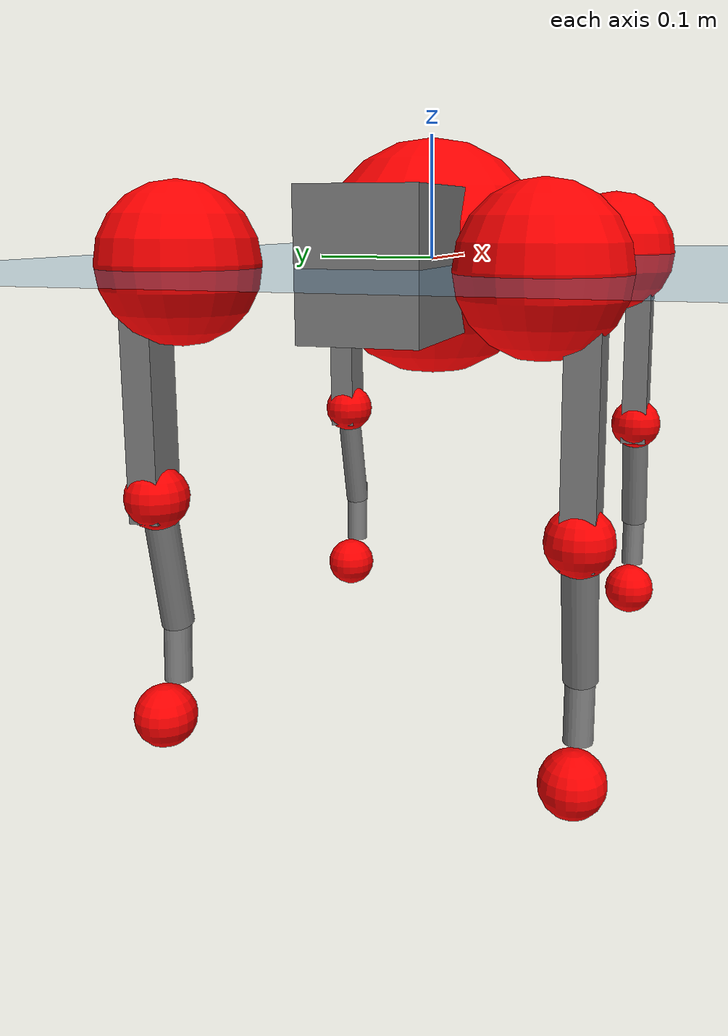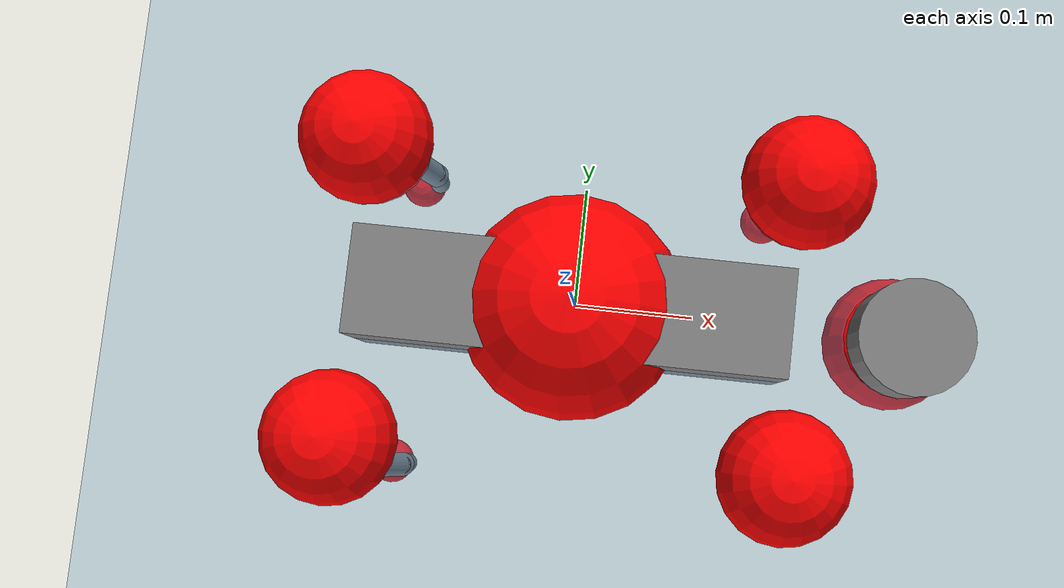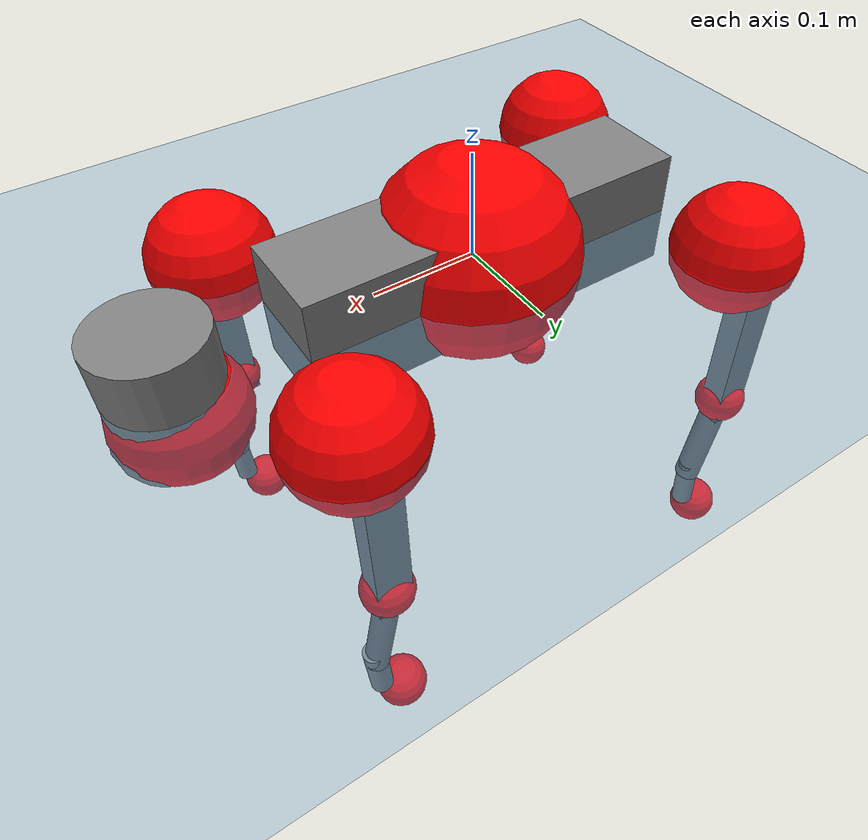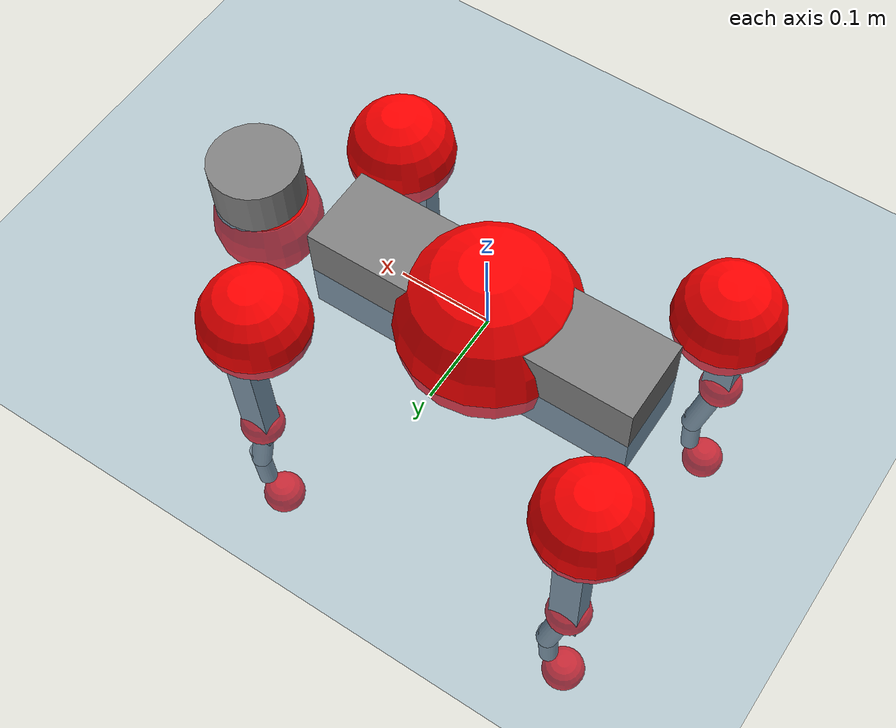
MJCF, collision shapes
<mujoco model="go2">
  <compiler angle="radian" assetdir="assets" balanceinertia="true" inertiafromgeom="false"/>

  <option timestep="0.005" density="1.2" viscosity="2e-05"/>

  <size nkey="1"/>

  <visual>
    <quality shadowsize="8192"/>
    <map shadowclip="0.5"/>
  </visual>

  <default>
    <default class="/">
      <geom contype="0" conaffinity="0" group="1" solref="-1000 -80"/>
      <site size="0.01 0.005 0.005" group="5"/>
      <general forcelimited="true" biastype="affine" gainprm="20" biasprm="0 -20 -0.5"/>
      <default class="go2">
        <joint armature="0.01" damping="0.01" frictionloss="0.2"/>
        <geom condim="1" margin="0.001"/>
        <default class="visual">
          <geom type="mesh" group="2"/>
        </default>
        <default class="collision">
          <geom group="3"/>
          <default class="foot">
            <geom size="0.022 0 0" condim="6" priority="1" friction="0.8 0.02 0.01" solimp="0.015 1 0.022"/>
          </default>
        </default>
        <default class="reward_collision_sphere">
          <geom group="5" rgba="1 0 0 1"/>
        </default>
      </default>
    </default>
  </default>

  <asset>
    <texture type="skybox" colorspace="auto" name="//unnamed_texture_0" builtin="gradient" rgb1="0.95 0.95 0.95" rgb2="0.95 0.95 0.95" width="100" height="600"/>
    <texture type="2d" colorspace="auto" name="texplane" builtin="checker" rgb1="0.345 0.575 0.748" rgb2="0.345 0.575 0.748" markrgb="1 1 1" width="512" height="512"/>
    <material name="MatPlane" class="/" texture="texplane" texuniform="true" texrepeat="2 2" specular="0.9"/>
    <material name="metal" class="/" rgba="0.9 0.95 0.95 1"/>
    <material name="black" class="/" rgba="0 0 0 1"/>
    <material name="white" class="/"/>
    <material name="gray" class="/" rgba="0.671705 0.692426 0.77427 1"/>
    <mesh name="base_0" class="/" file="base_0.obj"/>
    <mesh name="base_1" class="/" file="base_1.obj"/>
    <mesh name="base_2" class="/" file="base_2.obj"/>
    <mesh name="base_3" class="/" file="base_3.obj"/>
    <mesh name="base_4" class="/" file="base_4.obj"/>
    <mesh name="hip_0" class="/" file="hip_0.obj"/>
    <mesh name="hip_1" class="/" file="hip_1.obj"/>
    <mesh name="thigh_0" class="/" file="thigh_0.obj"/>
    <mesh name="thigh_1" class="/" file="thigh_1.obj"/>
    <mesh name="thigh_mirror_0" class="/" file="thigh_mirror_0.obj"/>
    <mesh name="thigh_mirror_1" class="/" file="thigh_mirror_1.obj"/>
    <mesh name="calf_0" class="/" file="calf_0.obj"/>
    <mesh name="calf_1" class="/" file="calf_1.obj"/>
    <mesh name="calf_mirror_0" class="/" file="calf_mirror_0.obj"/>
    <mesh name="calf_mirror_1" class="/" file="calf_mirror_1.obj"/>
    <mesh name="foot" class="/" file="foot.obj"/>
  </asset>

  <worldbody>
    <geom name="floor" class="/" size="100 100 0.125" type="plane" group="0" material="MatPlane"/>
    <light name="toplight_shadow" class="/" pos="0 0 5" dir="0.0990148 0.0990148 -0.990148" type="directional" ambient="0.04 0.04 0.04" diffuse="0.55 0.55 0.55" specular="0.12 0.12 0.12"/>
    <light name="toplight_fill" class="/" pos="0 0 5" dir="0.0990148 0.0990148 -0.990148" type="directional" castshadow="false" ambient="0.04 0.04 0.04" diffuse="0.3 0.3 0.3" specular="0.08 0.08 0.08"/>
    <body name="trunk" childclass="go2" pos="-0.00265958 -0.00145191 0.000702128" quat="0.999999 -0.000278964 0.00101773 -0.000103215">
      <inertial pos="0.0181203 -0.000394644 -0.00463347" quat="0.00232675 0.714114 0.000476849 0.700025" mass="6.19151" diaginertia="0.105634 0.159248 0.00872958"/>
      <joint name="//unnamed_joint_0" type="free" armature="0" damping="0" frictionloss="0"/>
      <geom name="//unnamed_geom_1" class="visual" material="black" mesh="base_0"/>
      <geom name="//unnamed_geom_2" class="visual" material="black" mesh="base_1"/>
      <geom name="//unnamed_geom_3" class="visual" material="black" mesh="base_2"/>
      <geom name="//unnamed_geom_4" class="visual" material="white" mesh="base_3"/>
      <geom name="//unnamed_geom_5" class="visual" material="gray" mesh="base_4"/>
      <geom name="trunk_1" class="collision" size="0.182171 0.0452764 0.0552033" type="box"/>
      <geom name="trunk_2" class="collision" size="0.0484239 0.0435815" pos="0.283607 0 0.0080925" type="cylinder"/>
      <geom name="trunk_3" class="collision" size="0.0455185" pos="0.291568 0 -0.048555"/>
      <geom name="//unnamed_geom_9" class="reward_collision_sphere" size="0.0968479"/>
      <geom name="//unnamed_geom_10" class="reward_collision_sphere" size="0.0581087" pos="0.278631 0 -0.0364162"/>
      <site name="imu" pos="-0.023819 -0.00422281 0.0395776" size="0.00968479"/>
      <camera name="track" pos="0 -2.20215 0" quat="0.707107 0.707107 0 0" mode="trackcom"/>
      <camera name="ego_camera" pos="0.310475 0 0.0364162" quat="-0.5 -0.5 0.5 0.5"/>
      <body name="FL_hip" pos="0.191249 0.0503853 0.00241019" quat="0.999999 -0.000933277 -0.00038655 0.000709353">
        <inertial pos="-0.00801585 0.00237405 -0.000462863" quat="0.495651 0.497941 0.506193 0.500154" mass="0.635667" diaginertia="0.000893907 0.000961338 0.000172348"/>
        <joint name="FL_hip_joint" pos="0 0 0" axis="0.999992 -0.00220177 -0.00344483" stiffness="0.00389989" range="-1.05794 0.99954" armature="0.010585" damping="0" frictionloss="0.18875"/>
        <geom name="//unnamed_geom_11" class="visual" material="metal" mesh="hip_0"/>
        <geom name="//unnamed_geom_12" class="visual" material="gray" mesh="hip_1"/>
        <geom name="//unnamed_geom_13" class="collision" size="0.04455 0.0193696" pos="0 0.0880859 0" quat="0.707107 0.707107 0 0" type="cylinder"/>
        <geom name="//unnamed_geom_14" class="reward_collision_sphere" size="0.0581087" pos="0 0.0770752 0"/>
        <body name="FL_thigh" pos="6.6824e-05 0.104298 0.00225839" quat="1 -0.000255263 0.000107009 0.000323843">
          <inertial pos="-0.00110841 -0.024305 -0.023919" quat="0.829673 0.0860394 -0.0222163 0.551132" mass="1.05566" diaginertia="0.00575769 0.00928913 0.000306532"/>
          <joint name="FL_thigh_joint" pos="0 0 0" axis="-0.00525584 0.999986 0.000423238" stiffness="0.0138432" range="-1.60985 3.53299" armature="0.0105781" damping="0" frictionloss="0.19347"/>
          <geom name="//unnamed_geom_15" class="visual" material="metal" mesh="thigh_0"/>
          <geom name="//unnamed_geom_16" class="visual" material="gray" mesh="thigh_1"/>
          <geom name="//unnamed_geom_17" class="collision" size="0.103143 0.0118639 0.0164641" pos="0 0 -0.0861851" quat="0.707107 0 0.707107 0" type="box"/>
          <body name="FL_calf" pos="0.000564217 -0.00164159 -0.17306" quat="1 0.000307715 -0.000338168 0.000121527">
            <inertial pos="0.00697485 -0.000105353 -0.115975" quat="0.71223 -0.0104648 -0.00490658 0.701851" mass="0.216639" diaginertia="0.0014742 0.00237436 1.81936e-05"/>
            <joint name="FL_calf_joint" pos="0 0 0" axis="-0.00517774 0.999961 0.00722304" range="-2.7257 -0.880828" armature="0.00948605" damping="4.73013e-05" frictionloss="0.196172"/>
            <geom name="//unnamed_geom_18" class="visual" material="gray" mesh="calf_0"/>
            <geom name="//unnamed_geom_19" class="visual" material="black" mesh="calf_1"/>
            <geom name="FL_calf0" class="collision" size="0.0116217 0.0581087" pos="0.0079609 0 -0.048555" quat="0.994493 0 -0.104807 0" type="cylinder"/>
            <geom name="//unnamed_geom_21" class="collision" size="0.0106533 0.0314756" pos="0.0199022 0 -0.119769" quat="0.999688 0 0.0249974 0" type="cylinder"/>
            <geom name="//unnamed_geom_22" class="visual" pos="0 0 -0.17237" quat="1 0 0 0" material="black" mesh="foot"/>
            <geom name="FL_foot" class="foot" size="0.0158039" pos="-0.00199022 0 -0.17237"/>
            <geom name="//unnamed_geom_24" class="reward_collision_sphere" size="0.024212"/>
            <geom name="//unnamed_geom_25" class="reward_collision_sphere" size="0.024212" pos="-0.00199022 0 -0.17237"/>
            <site name="FL_foot" class="foot" pos="-0.00199022 0 -0.17237" size="0.00968479"/>
          </body>
        </body>
      </body>
      <body name="FR_hip" pos="0.193517 -0.0484783 -0.000334607" quat="1 0.000389365 -0.000162288 8.50315e-05">
        <inertial pos="-0.00298778 -0.00311791 -0.000560351" quat="0.498833 0.507215 0.49877 0.495103" mass="0.646919" diaginertia="0.000882294 0.000992857 0.000167446"/>
        <joint name="FR_hip_joint" pos="0 0 0" axis="1 -8.70125e-06 -2.62936e-05" range="-1.03839 1.04714" armature="0.00838391" damping="0.0181283" frictionloss="0.219675"/>
        <geom name="//unnamed_geom_26" class="visual" pos="0 2.54225e-09 1.09042e-07" quat="4.63268e-05 1 0 0" material="metal" mesh="hip_0"/>
        <geom name="//unnamed_geom_27" class="visual" pos="0 4.12129e-09 -2.69703e-07" quat="4.63268e-05 1 0 0" material="gray" mesh="hip_1"/>
        <geom name="//unnamed_geom_28" class="collision" size="0.04455 0.0193696" pos="0 -0.0880859 0" quat="0.707107 0.707107 0 0" type="cylinder"/>
        <geom name="//unnamed_geom_29" class="reward_collision_sphere" size="0.0581087" pos="0 -0.0770752 0"/>
        <body name="FR_thigh" pos="0.00085501 -0.103689 0.00299109" quat="0.999999 0.000108545 0.00070173 0.0010994">
          <inertial pos="-0.00505643 0.0219958 -0.0253289" quat="0.551519 -0.0197936 0.0836869 0.829717" mass="1.02234" diaginertia="0.00584389 0.00960484 0.000300214"/>
          <joint name="FR_thigh_joint" pos="0 0 0" axis="-0.00010847 -1 1.63645e-06" range="-3.46965 1.58251" armature="0.00969452" damping="0.0164756" frictionloss="0.189193"/>
          <geom name="//unnamed_geom_30" class="visual" material="metal" mesh="thigh_mirror_0"/>
          <geom name="//unnamed_geom_31" class="visual" material="gray" mesh="thigh_mirror_1"/>
          <geom name="//unnamed_geom_32" class="collision" size="0.103143 0.0118639 0.0164641" pos="0 0 -0.0861851" quat="0.707107 0 0.707107 0" type="box"/>
          <body name="FR_calf" pos="0.000913202 -0.000538222 -0.171932" quat="1 2.34784e-06 2.67743e-06 3.1803e-07">
            <inertial pos="0.00651097 0.000530929 -0.113641" quat="0.70368 -0.0055401 0.000902158 0.710494" mass="0.222251" diaginertia="0.00153729 0.00238474 1.90741e-05"/>
            <joint name="FR_calf_joint" pos="0 0 0" axis="-0.00840242 -0.999944 0.00640942" range="0.841266 2.71331" armature="0.00994233" damping="0.0127242" frictionloss="0.183776"/>
            <geom name="//unnamed_geom_33" class="visual" material="gray" mesh="calf_mirror_0"/>
            <geom name="//unnamed_geom_34" class="visual" material="black" mesh="calf_mirror_1"/>
            <geom name="FR_calf0" class="collision" size="0.0125902 0.0581087" pos="0.00995112 0 -0.048555" quat="0.995004 0 -0.0998334 0" type="cylinder"/>
            <geom name="//unnamed_geom_36" class="collision" size="0.0106533 0.0314756" pos="0.0199022 0 -0.119769" quat="0.999688 0 0.0249974 0" type="cylinder"/>
            <geom name="//unnamed_geom_37" class="visual" pos="0 0 -0.17237" quat="1 0 0 0" material="black" mesh="foot"/>
            <geom name="FR_foot" class="foot" size="0.0240528" pos="-0.00199022 0 -0.17237"/>
            <geom name="//unnamed_geom_39" class="reward_collision_sphere" size="0.024212"/>
            <geom name="//unnamed_geom_40" class="reward_collision_sphere" size="0.024212" pos="-0.00199022 0 -0.17237"/>
            <site name="FR_foot" class="foot" pos="-0.00199022 0 -0.17237" size="0.00968479"/>
          </body>
        </body>
      </body>
      <body name="RL_hip" pos="-0.191789 0.0505853 0.000837741" quat="0.999999 0.00113432 0.000462238 -0.000331641">
        <inertial pos="0.00809645 0.00264157 -0.000361556" quat="0.505618 0.498056 0.49715 0.499132" mass="0.612709" diaginertia="0.000869695 0.000991512 0.000169933"/>
        <joint name="RL_hip_joint" pos="0 0 0" axis="-0.999897 0.0138359 0.00392722" stiffness="0.00434725" range="-1.03078 1.04237" armature="0.00964115" damping="0.00798551" frictionloss="0.186352"/>
        <geom name="//unnamed_geom_41" class="visual" pos="-1.61915e-09 0 -3.17391e-07" quat="4.63268e-05 0 1 0" material="metal" mesh="hip_0"/>
        <geom name="//unnamed_geom_42" class="visual" pos="-2.62484e-09 0 -2.81481e-07" quat="4.63268e-05 0 1 0" material="gray" mesh="hip_1"/>
        <geom name="//unnamed_geom_43" class="collision" size="0.04455 0.0193696" pos="0 0.0880859 0" quat="0.707107 0.707107 0 0" type="cylinder"/>
        <geom name="//unnamed_geom_44" class="reward_collision_sphere" size="0.0581087" pos="0 0.0770752 0"/>
        <body name="RL_thigh" pos="-0.00240645 0.104725 0.00135138" quat="0.999999 0.00110817 0.000513789 -0.000386146">
          <inertial pos="-0.00352179 -0.0237646 -0.0259671" quat="0.830917 0.076948 -0.0290957 0.550281" mass="1.01778" diaginertia="0.00573356 0.00922894 0.000301578"/>
          <joint name="RL_thigh_joint" pos="0 0 0" axis="0.00377843 0.999979 0.00518621" stiffness="0.00375951" range="-0.518065 4.52365" armature="0.00914284" damping="0" frictionloss="0.202471"/>
          <geom name="//unnamed_geom_45" class="visual" material="metal" mesh="thigh_0"/>
          <geom name="//unnamed_geom_46" class="visual" material="gray" mesh="thigh_1"/>
          <geom name="//unnamed_geom_47" class="collision" size="0.103143 0.0118639 0.0164641" pos="0 0 -0.0861851" quat="0.707107 0 0.707107 0" type="box"/>
          <body name="RL_calf" pos="0.000353414 -0.00199722 -0.172398" quat="1 6.56106e-05 8.55453e-05 3.04559e-06">
            <inertial pos="0.00632337 -0.000407891 -0.113839" quat="0.710201 0.0022427 -0.00494513 0.703978" mass="0.218224" diaginertia="0.00145268 0.00237202 1.82379e-05"/>
            <joint name="RL_calf_joint" pos="0 0 0" axis="0.000580927 0.999998 -0.00169344" range="-2.70026 -0.837232" armature="0.00986717" damping="0" frictionloss="0.191087"/>
            <geom name="//unnamed_geom_48" class="visual" material="gray" mesh="calf_0"/>
            <geom name="//unnamed_geom_49" class="visual" material="black" mesh="calf_1"/>
            <geom name="RL_calf0" class="collision" size="0.0125902 0.0581087" pos="0.00995112 0 -0.048555" quat="0.995004 0 -0.0998334 0" type="cylinder"/>
            <geom name="//unnamed_geom_51" class="collision" size="0.0106533 0.0314756" pos="0.0199022 0 -0.119769" quat="0.999688 0 0.0249974 0" type="cylinder"/>
            <geom name="//unnamed_geom_52" class="visual" pos="0 0 -0.17237" quat="1 0 0 0" material="black" mesh="foot"/>
            <geom name="RL_foot" class="foot" size="0.0205263" pos="-0.00199022 0 -0.17237"/>
            <geom name="//unnamed_geom_54" class="reward_collision_sphere" size="0.024212"/>
            <geom name="//unnamed_geom_55" class="reward_collision_sphere" size="0.024212" pos="-0.00199022 0 -0.17237"/>
            <site name="RL_foot" class="foot" pos="-0.00199022 0 -0.17237" size="0.00968479"/>
          </body>
        </body>
      </body>
      <body name="RR_hip" pos="-0.192061 -0.0538766 -0.000106936" quat="1 0.000476721 -0.00048594 -0.000258789">
        <inertial pos="0.00502428 9.4168e-05 0.000113134" quat="0.495196 0.506687 0.491185 0.506742" mass="0.614142" diaginertia="0.00086808 0.000975193 0.000167748"/>
        <joint name="RR_hip_joint" pos="0 0 0" axis="-0.99999 -0.000519328 0.00444919" stiffness="0.00546976" range="-1.05847 1.05243" armature="0.0110859" damping="0.0193091" frictionloss="0.170348"/>
        <geom name="//unnamed_geom_56" class="visual" pos="1.62282e-09 2.54225e-09 -4.26434e-07" quat="2.14617e-09 4.63268e-05 4.63268e-05 -1" material="metal" mesh="hip_0"/>
        <geom name="//unnamed_geom_57" class="visual" pos="2.61577e-09 4.12129e-09 -1.17778e-08" quat="2.14617e-09 4.63268e-05 4.63268e-05 -1" material="gray" mesh="hip_1"/>
        <geom name="//unnamed_geom_58" class="collision" size="0.04455 0.0193696" pos="0 -0.0880859 0" quat="0.707107 0.707107 0 0" type="cylinder"/>
        <geom name="//unnamed_geom_59" class="reward_collision_sphere" size="0.0581087" pos="0 -0.0770752 0"/>
        <body name="RR_thigh" pos="-0.000788736 -0.105858 -0.00296098" quat="1 -0.000184723 -0.000318556 0.00021729">
          <inertial pos="-0.00344299 0.0246589 -0.0261241" quat="0.5525 -0.020155 0.0837429 0.82905" mass="1.05835" diaginertia="0.00590435 0.00958839 0.000298276"/>
          <joint name="RR_thigh_joint" pos="0 0 0" axis="0.00299326 -0.999995 0.000566963" range="-4.5885 0.542101" armature="0.00983963" damping="0.0211394" frictionloss="0.203958"/>
          <geom name="//unnamed_geom_60" class="visual" material="metal" mesh="thigh_mirror_0"/>
          <geom name="//unnamed_geom_61" class="visual" material="gray" mesh="thigh_mirror_1"/>
          <geom name="//unnamed_geom_62" class="collision" size="0.103143 0.0118639 0.0164641" pos="0 0 -0.0861851" quat="0.707107 0 0.707107 0" type="box"/>
          <body name="RR_calf" pos="-0.00260871 0.000211897 -0.172419" quat="1 6.7518e-05 -0.000130909 -0.000188898">
            <inertial pos="0.008695 0.00110703 -0.114321" quat="0.702435 -0.00308433 0.00438865 0.711728" mass="0.218988" diaginertia="0.00141212 0.00224298 1.80987e-05"/>
            <joint name="RR_calf_joint" pos="0 0 0" axis="-0.00825444 -0.999958 0.00394997" range="0.871683 2.77748" armature="0.00865308" damping="0.012303" frictionloss="0.183255"/>
            <geom name="//unnamed_geom_63" class="visual" material="gray" mesh="calf_mirror_0"/>
            <geom name="//unnamed_geom_64" class="visual" material="black" mesh="calf_mirror_1"/>
            <geom name="RR_calf0" class="collision" size="0.0125902 0.0581087" pos="0.00995112 0 -0.048555" quat="0.995004 0 -0.0998334 0" type="cylinder"/>
            <geom name="//unnamed_geom_66" class="collision" size="0.0106533 0.0314756" pos="0.0199022 0 -0.119769" quat="0.999688 0 0.0249974 0" type="cylinder"/>
            <geom name="//unnamed_geom_67" class="visual" pos="0 0 -0.17237" quat="1 0 0 0" material="black" mesh="foot"/>
            <geom name="RR_foot" class="foot" size="0.023036" pos="-0.00199022 0 -0.17237"/>
            <geom name="//unnamed_geom_69" class="reward_collision_sphere" size="0.024212"/>
            <geom name="//unnamed_geom_70" class="reward_collision_sphere" size="0.024212" pos="-0.00199022 0 -0.17237"/>
            <site name="RR_foot" class="foot" pos="-0.00199022 0 -0.17237" size="0.00968479"/>
          </body>
        </body>
      </body>
    </body>
  </worldbody>

  <contact>
    <pair class="/" geom1="floor" geom2="FL_foot" name="//unnamed_contact_0"/>
    <pair class="/" geom1="floor" geom2="FR_foot" name="//unnamed_contact_1"/>
    <pair class="/" geom1="floor" geom2="RL_foot" name="//unnamed_contact_2"/>
    <pair class="/" geom1="floor" geom2="RR_foot" name="//unnamed_contact_3"/>
  </contact>

  <actuator>
    <general name="FL_hip" class="/" joint="FL_hip_joint" forcerange="-22.4906 22.4906" gainprm="19.3939" biasprm="0 -19.3939 -0.483679"/>
    <general name="FL_thigh" class="/" joint="FL_thigh_joint" forcerange="-22.8468 22.8468" gainprm="19.3939" biasprm="0 -19.3939 -0.483679"/>
    <general name="FL_calf" class="/" joint="FL_calf_joint" forcerange="-44.0797 44.0797" gainprm="19.3939" biasprm="0 -19.3939 -0.483679"/>
    <general name="FR_hip" class="/" joint="FR_hip_joint" forcerange="-25.1777 25.1777" gainprm="19.3939" biasprm="0 -19.3939 -0.483679"/>
    <general name="FR_thigh" class="/" joint="FR_thigh_joint" forcerange="-22.6473 22.6473" gainprm="19.3939" biasprm="0 -19.3939 -0.483679"/>
    <general name="FR_calf" class="/" joint="FR_calf_joint" forcerange="-40.7395 40.7395" gainprm="19.3939" biasprm="0 -19.3939 -0.483679"/>
    <general name="RL_hip" class="/" joint="RL_hip_joint" forcerange="-22.8865 22.8865" gainprm="19.3939" biasprm="0 -19.3939 -0.483679"/>
    <general name="RL_thigh" class="/" joint="RL_thigh_joint" forcerange="-22.8161 22.8161" gainprm="19.3939" biasprm="0 -19.3939 -0.483679"/>
    <general name="RL_calf" class="/" joint="RL_calf_joint" forcerange="-43.9466 43.9466" gainprm="19.3939" biasprm="0 -19.3939 -0.483679"/>
    <general name="RR_hip" class="/" joint="RR_hip_joint" forcerange="-22.8329 22.8329" gainprm="19.3939" biasprm="0 -19.3939 -0.483679"/>
    <general name="RR_thigh" class="/" joint="RR_thigh_joint" forcerange="-23.8597 23.8597" gainprm="19.3939" biasprm="0 -19.3939 -0.483679"/>
    <general name="RR_calf" class="/" joint="RR_calf_joint" forcerange="-48.4259 48.4259" gainprm="19.3939" biasprm="0 -19.3939 -0.483679"/>
  </actuator>

  <sensor>
    <gyro site="imu" name="imu_angular_velocity"/>
    <velocimeter site="imu" name="imu_linear_velocity"/>
    <framelinvel objtype="site" objname="FL_foot" name="FL_foot_global_linear_velocity"/>
    <framelinvel objtype="site" objname="FR_foot" name="FR_foot_global_linear_velocity"/>
    <framelinvel objtype="site" objname="RL_foot" name="RL_foot_global_linear_velocity"/>
    <framelinvel objtype="site" objname="RR_foot" name="RR_foot_global_linear_velocity"/>
  </sensor>

  <keyframe>
    <key name="home" qpos="0 0 0.325 1 0 0 0 0.1 0.8 -1.5 -0.1 -0.8 1.5 -0.1 0.8 -1.5 0.1 -0.8 1.5"/>
  </keyframe>
</mujoco>
